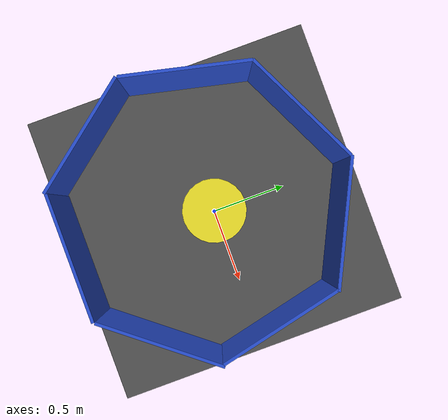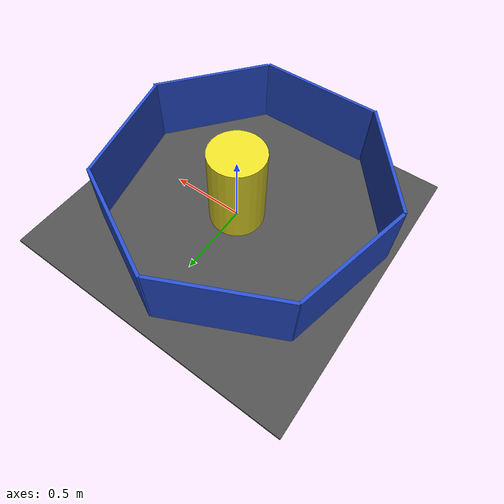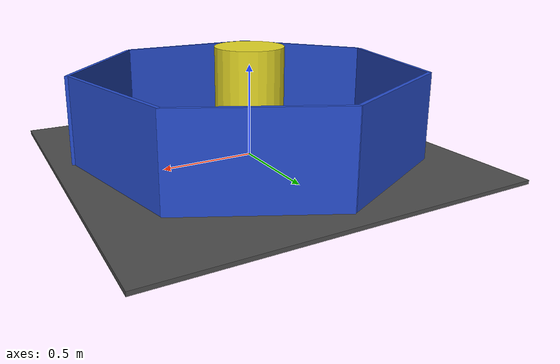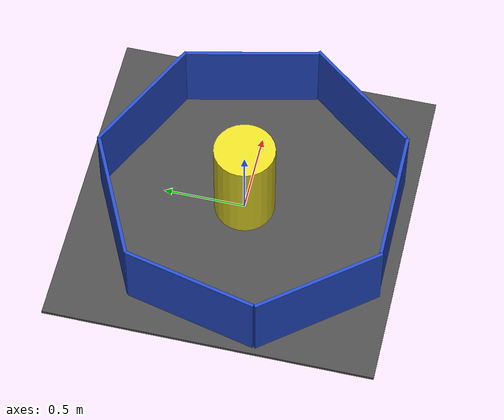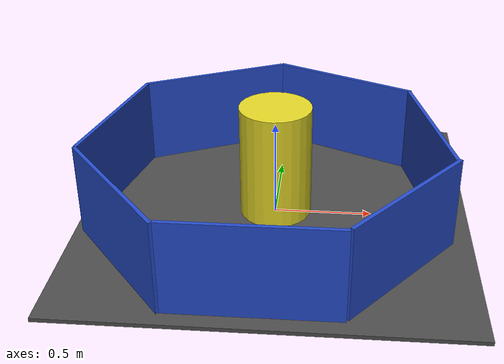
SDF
<?xml version='1.0' encoding='us-ascii'?>
<sdf version='1.6'>
  <world name='default'>
    <light name='lightball_1' type='point'>
      <cast_shadows>0</cast_shadows>
      <pose>1 0.5 1 0 0 0</pose>
      <diffuse>255 255 255 255</diffuse>
      <specular>0 0 0 0</specular>
      <attenuation>
        <constant>0.1</constant>
        <linear>0.5</linear>
        <quadratic>0.1</quadratic>
      </attenuation>
    </light>
    <light name='lightball_2' type='point'>
      <cast_shadows>0</cast_shadows>
      <pose>-1 -0.5 1 0 0 0</pose>
      <diffuse>255 255 255 255</diffuse>
      <specular>0 0 0 0</specular>
      <attenuation>
        <constant>0.1</constant>
        <linear>0.5</linear>
        <quadratic>0.1</quadratic>
      </attenuation>
    </light>
    <gravity>0 0 -9.8</gravity>
    <magnetic_field>6e-06 2.3e-05 -4.2e-05</magnetic_field>
    <atmosphere type='adiabatic'/>
    <physics name='default_physics' default='0' type='ode'>
      <max_step_size>0.001</max_step_size>
      <real_time_factor>1</real_time_factor>
      <real_time_update_rate>1000</real_time_update_rate>
    </physics>
    <scene>
      <ambient>0.4 0.4 0.4 1</ambient>
      <background>0.7 0.7 0.7 1</background>
      <shadows>0</shadows>
    </scene>
    <spherical_coordinates>
      <surface_model>EARTH_WGS84</surface_model>
      <latitude_deg>0</latitude_deg>
      <longitude_deg>0</longitude_deg>
      <elevation>0</elevation>
      <heading_deg>0</heading_deg>
    </spherical_coordinates>
    <gui fullscreen='0'>
      <camera name='user_camera'>
        <pose frame=''>0 0 0.5 0 -0.23 1.57</pose>
        <view_controller>orbit</view_controller>
        <projection_type>perspective</projection_type>
      </camera>
    </gui>
    <model name="yellow_barrel">
      <static>1</static>
      <pose>0 0 0.3 0 0 0</pose>
      <link name="link">
        <collision name="collision">
          <geometry>
            <cylinder>
              <radius>0.185</radius>
              <length>0.6</length>
            </cylinder>
          </geometry>
        </collision>
        <visual name="visual">
          <material>
            <script>
              <name>Gazebo/Yellow</name>
              <uri>file://media/materials/scripts/gazebo.material</uri>
            </script>
          </material>
          <geometry>
            <cylinder>
              <radius>0.185</radius>
              <length>0.6</length>
            </cylinder>
          </geometry>
        </visual>
      </link>
    </model><model name="wall_1">
      <static>1</static>
      <pose>-0.03 -0.91 0.24 0 0 0</pose>
      <link name="link">
        <collision name="collision">
          <geometry>
            <box>
              <size>0.82 0.02 0.48</size>
            </box>
          </geometry>
        </collision>
        <visual name="visual">
          <material>
            <script>
              <name>Gazebo/Blue</name>
              <uri>file://media/materials/scripts/gazebo.material</uri>
            </script>
          </material>
          <geometry>
            <box>
              <size>0.82 0.02 0.48</size>
            </box>
          </geometry>
        </visual>
      </link>
    </model>
    <model name="wall_2">
      <static>1</static>
      <pose>0.64 -0.58 0.24 0 0 0.897</pose>
      <link name="link">
        <collision name="collision">
          <geometry>
            <box>
              <size>0.82 0.02 0.48</size>
            </box>
          </geometry>
        </collision>
        <visual name="visual">
          <material>
            <script>
              <name>Gazebo/Blue</name>
              <uri>file://media/materials/scripts/gazebo.material</uri>
            </script>
          </material>
          <geometry>
            <box>
              <size>0.82 0.02 0.48</size>
            </box>
          </geometry>
        </visual>
      </link>
    </model>
    <model name="wall_3">
      <static>1</static>
      <pose>0.79 0.136 0.24 0 0 1.794</pose>
      <link name="link">
        <collision name="collision">
          <geometry>
            <box>
              <size>0.82 0.02 0.48</size>
            </box>
          </geometry>
        </collision>
        <visual name="visual">
          <material>
            <script>
              <name>Gazebo/Blue</name>
              <uri>file://media/materials/scripts/gazebo.material</uri>
            </script>
          </material>
          <geometry>
            <box>
              <size>0.82 0.02 0.48</size>
            </box>
          </geometry>
        </visual>
      </link>
    </model>
    <model name="wall_4">
      <static>1</static>
      <pose>0.34 0.71 0.24 0 0 2.691</pose>
      <link name="link">
        <collision name="collision">
          <geometry>
            <box>
              <size>0.82 0.02 0.48</size>
            </box>
          </geometry>
        </collision>
        <visual name="visual">
          <material>
            <script>
              <name>Gazebo/Blue</name>
              <uri>file://media/materials/scripts/gazebo.material</uri>
            </script>
          </material>
          <geometry>
            <box>
              <size>0.82 0.02 0.48</size>
            </box>
          </geometry>
        </visual>
      </link>
    </model>
    <model name="wall_5">
      <static>1</static>
      <pose>-0.4 0.705 0.24 0 0 3.589</pose>
      <link name="link">
        <collision name="collision">
          <geometry>
            <box>
              <size>0.82 0.02 0.48</size>
            </box>
          </geometry>
        </collision>
        <visual name="visual">
          <material>
            <script>
              <name>Gazebo/Blue</name>
              <uri>file://media/materials/scripts/gazebo.material</uri>
            </script>
          </material>
          <geometry>
            <box>
              <size>0.82 0.02 0.48</size>
            </box>
          </geometry>
        </visual>
      </link>
    </model>
    <model name="wall_6">
      <static>1</static>
      <pose>-0.86 0.128 0.24 0 0 4.486</pose>
      <link name="link">
        <collision name="collision">
          <geometry>
            <box>
              <size>0.82 0.02 0.48</size>
            </box>
          </geometry>
        </collision>
        <visual name="visual">
          <material>
            <script>
              <name>Gazebo/Blue</name>
              <uri>file://media/materials/scripts/gazebo.material</uri>
            </script>
          </material>
          <geometry>
            <box>
              <size>0.82 0.02 0.48</size>
            </box>
          </geometry>
        </visual>
      </link>
    </model>
    <model name="wall_7">
      <static>1</static>
      <pose>-0.7 -0.6 0.24 0 0 5.383</pose>
      <link name="link">
        <collision name="collision">
          <geometry>
            <box>
              <size>0.82 0.02 0.48</size>
            </box>
          </geometry>
        </collision>
        <visual name="visual">
          <material>
            <script>
              <name>Gazebo/Blue</name>
              <uri>file://media/materials/scripts/gazebo.material</uri>
            </script>
          </material>
          <geometry>
            <box>
              <size>0.82 0.02 0.48</size>
            </box>
          </geometry>
        </visual>
      </link>
    </model>
    <model name="wall_bottom">
      <static>1</static>
      <pose>0 0 0 1.57 0 0</pose>
      <link name="link">
        <collision name="collision">
          <geometry>
            <box>
              <size>2 0.02 2</size>
            </box>
          </geometry>
          <surface>
            <friction>
            <ode>
              <mu>100000.0</mu>
              <mu2>100000.0</mu2>
              <slip1>0.0</slip1>
              <slip2>0.0</slip2>
            </ode>
          </friction>
          </surface>
        </collision>
        <visual name="visual">
          <material>
            <script>
              <name>Gazebo/DarkGrey</name>
              <uri>file://media/materials/scripts/gazebo.material</uri>
            </script>
          </material>
          <geometry>
            <box>
              <size>2 0.02 2</size>
            </box>
          </geometry>
        </visual>
      </link>
    </model>
  </world>
</sdf>
